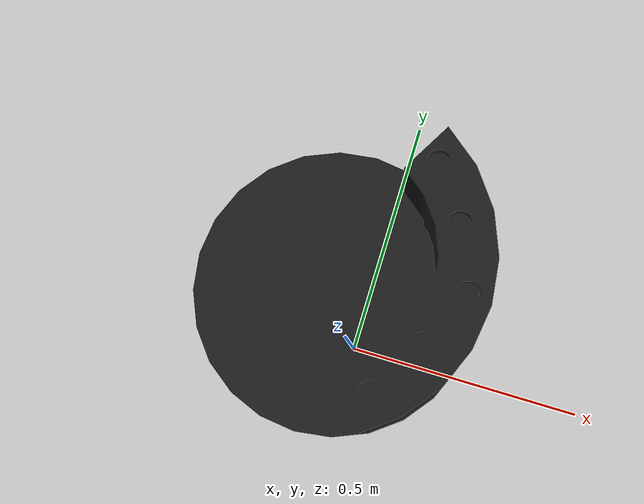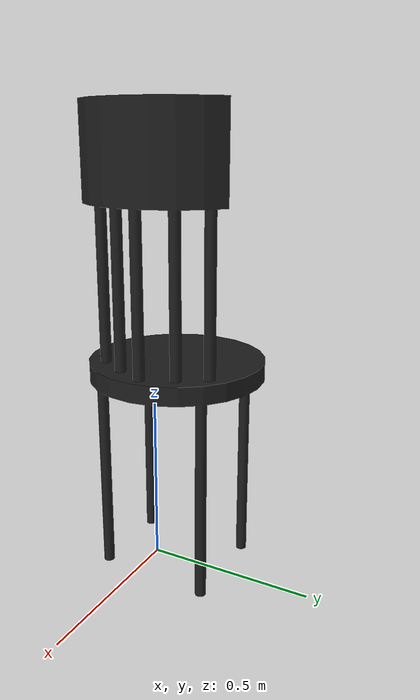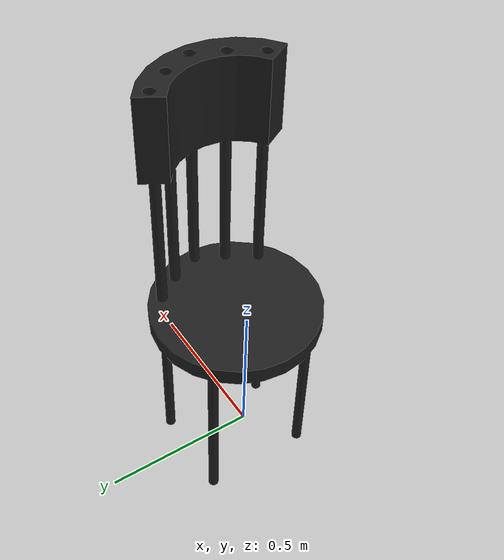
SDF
<?xml version="1.0" ?>
<sdf version="1.5">
  <model name="chair">
    <static>true</static>
    <link name="link">
      <pose>0 0 0 1.57 0 0</pose>
      <collision name="collision">
        <geometry>
          <mesh>
            <uri>model://chair/meshes/chair.obj</uri>
          </mesh>
        </geometry>
      </collision>
      <visual name="visual">
        <geometry>
          <mesh>
            <uri>model://chair/meshes/chair.obj</uri>
          </mesh>
        </geometry>
        <material>
          <script>
            <uri>file://media/materials/scripts/gazebo.material</uri>
            <name>Gazebo/Black</name>
          </script>
        </material>
      </visual>
    </link>
  </model>
</sdf>
